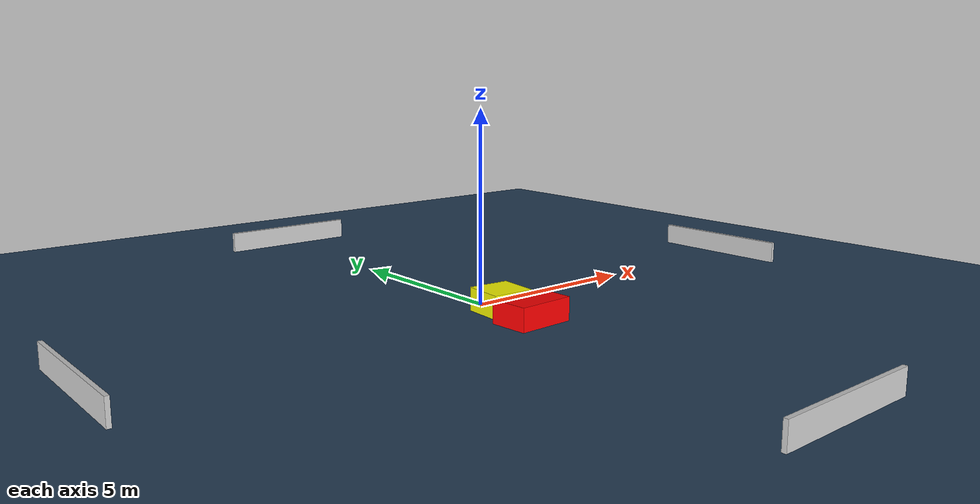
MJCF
<?xml version="1.0" ?>
<mujoco model="generated_environment">
  <option timestep="0.01" integrator="RK4" cone="elliptic"/>
  <default>
    <geom density="1"/>
  </default>
  <asset>
    <texture builtin="gradient" height="3072" name="skybox" rgb1="0.3 0.5 0.7" rgb2="0 0 0" type="skybox" width="512"/>
    <texture builtin="checker" height="300" name="groundplane" rgb1="0.2 0.3 0.4" rgb2="0.1 0.2 0.3" type="2d" width="300"/>
    <material name="groundplane" reflectance="0.2" texrepeat="5 5" texture="groundplane"/>
  </asset>
  <worldbody>
    <light dir="0 0 -1" directional="true" pos="0 0 1.5"/>
    <geom condim="3" friction="0.5 0.005 0.001" material="groundplane" name="floor" pos="0 0 0" size="0 0 0.05" type="plane"/>
    <body name="walls">
      <geom name="wall_1" condim="4" pos="-10.0 0.0 0.3" rgba="0.800000011920929 0.800000011920929 0.800000011920929 1.0" size="0.05 2.0 0.3" type="box"/>
      <geom name="wall_2" condim="4" pos="10.0 0.0 0.3" rgba="0.800000011920929 0.800000011920929 0.800000011920929 1.0" size="0.05 2.0 0.3" type="box"/>
      <geom name="wall_3" condim="4" pos="0.0 -10.0 0.3" rgba="0.800000011920929 0.800000011920929 0.800000011920929 1.0" size="2.0 0.05 0.3" type="box"/>
      <geom name="wall_4" condim="4" pos="0.0 10.0 0.3" rgba="0.800000011920929 0.800000011920929 0.800000011920929 1.0" size="2.0 0.05 0.3" type="box"/>
    </body>
    <body name="robot">
      <joint name="joint_x" type="slide" pos="0 0 0" axis="1 0 0"/>
      <joint name="joint_y" type="slide" pos="0 0 0" axis="0 1 0"/>
      <geom name="robot" type="cylinder" pos="0.0 0.0 0.2" size="0.2 0.2 0.0" mass="5.0" friction="1.0 0.005 0.0001" condim="4" rgba="1.0 1.0 0.0 1.0"/>
    </body>
    <body name="obstacle_1_movable">
      <geom name="obstacle_1_movable" condim="4" pos="-0.03185163975423339 -0.8171685006630712 0.3" euler="0 0 175.00354328575753" friction="0.0 0.005 0.001" rgba="1.0 1.0 0.0 1.0" size="0.5521560382751898 0.5349579461059899 0.3" type="box" mass="0.1"/>
      <joint type="free"/>
    </body>
    <body name="obstacle_2_static">
      <geom name="obstacle_2_static" condim="4" pos="-0.0705333839322198 -1.965600148022916 0.3" euler="0 0 182.2074711225676" friction="0.0 0.005 0.001" rgba="1.0 0.0 0.0 1.0" size="0.7701254104744764 0.519951796859917 0.3" type="box"/>
    </body>
  </worldbody>
  <actuator>
    <motor name="actuator_x" joint="joint_x" gear="1" ctrlrange="-1 1"/>
    <motor name="actuator_y" joint="joint_y" gear="1" ctrlrange="-1 1"/>
  </actuator>
</mujoco>
